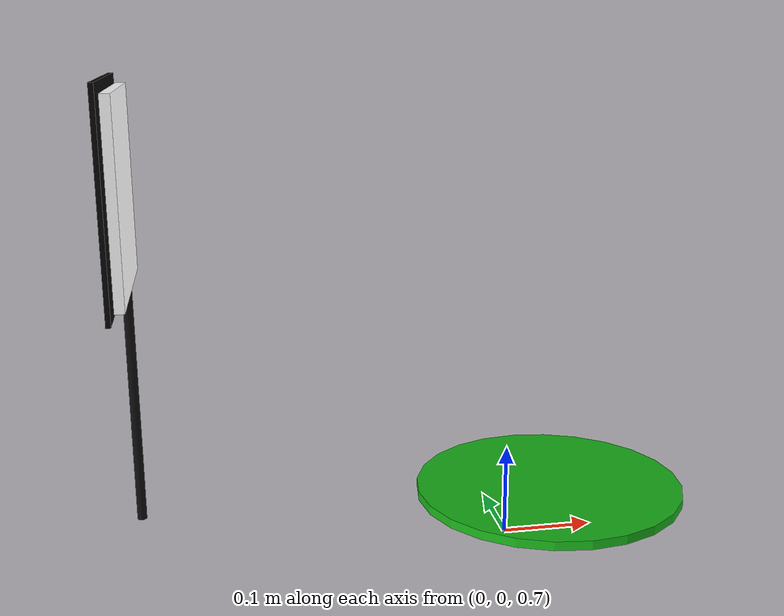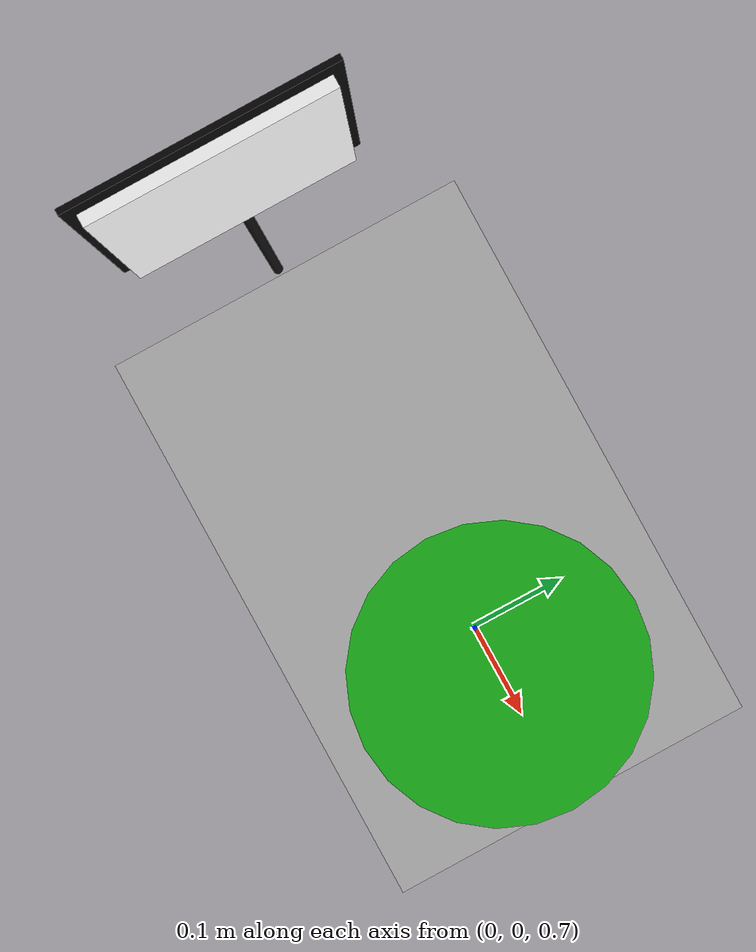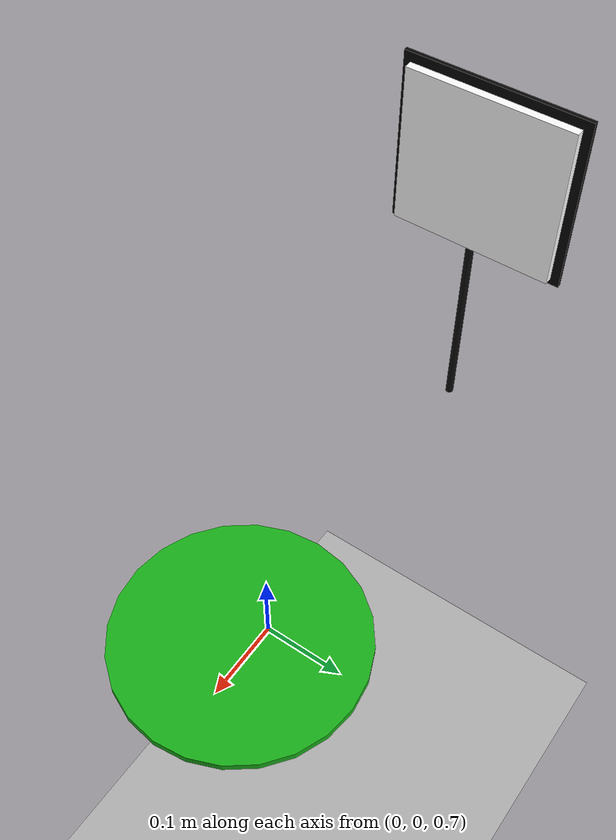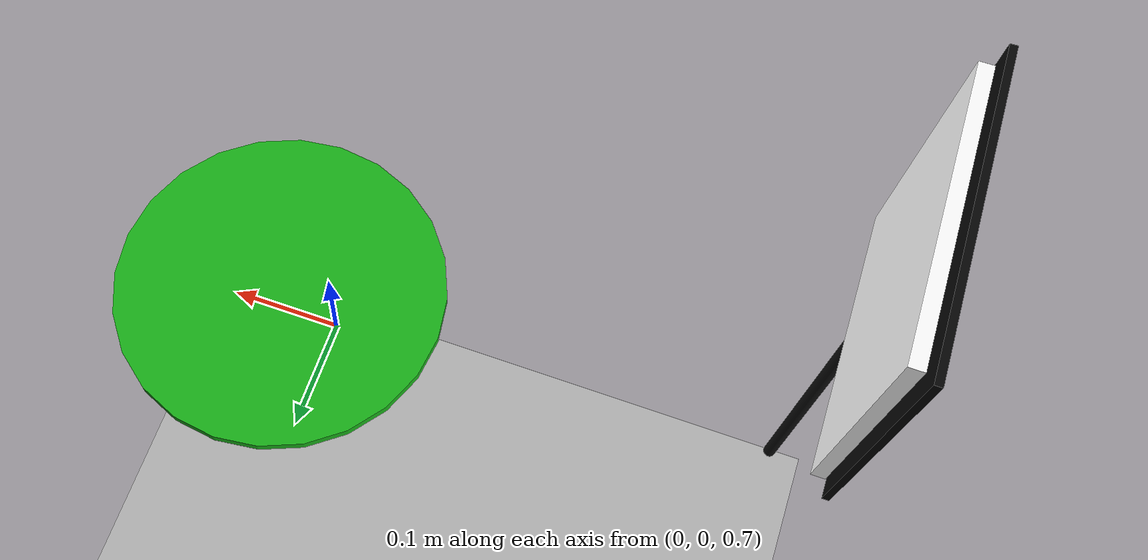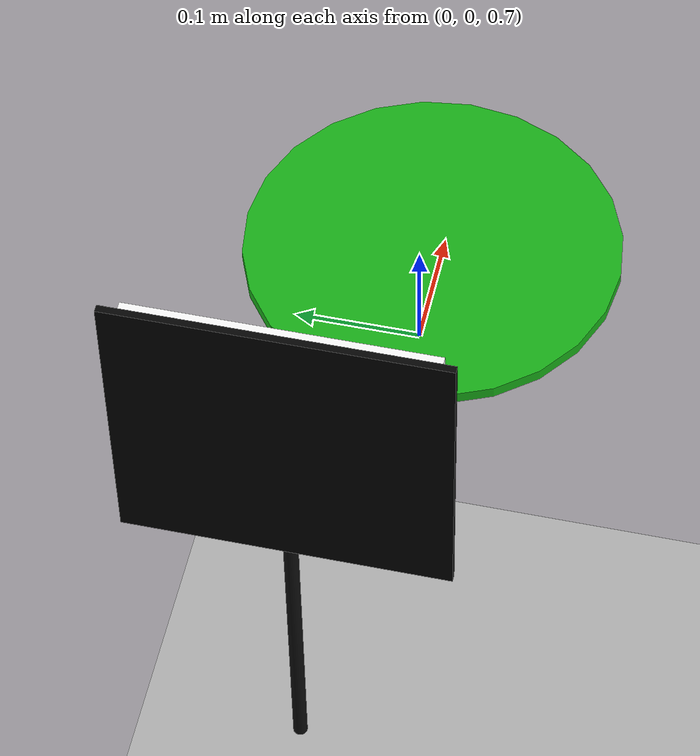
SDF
<sdf version="1.8">
 <world name="tello_sim">
  <physics name="fast_sim" type="ignored">
   <max_step_size>0.001</max_step_size>
   <real_time_factor>0</real_time_factor>
   <real_time_update_rate>0</real_time_update_rate>
  </physics>
  <plugin filename="gz-sim-physics-system" name="gz::sim::systems::Physics"/>
  <plugin filename="gz-sim-user-commands-system" name="gz::sim::systems::UserCommands"/>
  <plugin filename="gz-sim-scene-broadcaster-system" name="gz::sim::systems::SceneBroadcaster"/>
  <plugin filename="gz-sim-sensors-system" name="gz::sim::systems::Sensors">
   <render_engine>ogre2</render_engine>
  </plugin>
  <light type="directional" name="sun">
   <pose>0 0 10 0 0 0</pose>
   <diffuse>0.8 0.8 0.8 1</diffuse>
   <specular>0.2 0.2 0.2 1</specular>
   <direction>-0.5 0.1 -0.9</direction>
  </light>
  <model name="ground_plane">
   <static>true</static>
   <link name="link">
    <collision name="collision"><geometry><plane><normal>0 0 1</normal></plane></geometry></collision>
    <visual name="visual">
     <geometry><plane><normal>0 0 1</normal><size>100 100</size></plane></geometry>
     <material><ambient>0.7 0.7 0.7 1</ambient><diffuse>0.7 0.7 0.7 1</diffuse></material>
    </visual>
   </link>
  </model>
  <model name="landing_pad">
   <static>true</static>
   <pose>0.05 0 0.75 0 0 0</pose>
   <link name="link">
    <visual name="visual">
     <geometry><cylinder><radius>0.15</radius><length>0.01</length></cylinder></geometry>
     <material><ambient>0.1 0.7 0.1 1</ambient><diffuse>0.1 0.7 0.1 1</diffuse></material>
    </visual>
   </link>
  </model>
  <model name="marker_pole">
   <static>true</static>
   <pose>-0.40 0 0.925 0 0 0</pose>
   <link name="link">
    <visual name="visual">
     <geometry><cylinder><radius>0.005</radius><length>0.35</length></cylinder></geometry>
     <material><ambient>0.05 0.05 0.05 1</ambient><diffuse>0.05 0.05 0.05 1</diffuse></material>
    </visual>
   </link>
  </model>
  <model name="aruco_marker">
   <static>true</static>
   <pose>-0.40 0 1.10 0 0 0</pose>
   <link name="link">
    <visual name="visual">
     <geometry><box><size>0.01 0.20 0.20</size></box></geometry>
     <material>
      <ambient>1.0 1.0 1.0 1</ambient>
      <diffuse>1.0 1.0 1.0 1</diffuse>
      <emissive>1.0 1.0 1.0 1</emissive>
      <pbr>
       <metal><albedo_map>aruco_marker.png</albedo_map><emissive_map>aruco_marker.png</emissive_map></metal>
      </pbr>
     </material>
    </visual>
   </link>
  </model>
  <model name="marker_backplate">
   <static>true</static>
   <pose>-0.41 0 1.10 0 0 0</pose>
   <link name="link">
    <visual name="visual">
     <geometry><box><size>0.005 0.22 0.22</size></box></geometry>
     <material><ambient>0.02 0.02 0.02 1</ambient><diffuse>0.02 0.02 0.02 1</diffuse></material>
    </visual>
   </link>
  </model>
 </world>
</sdf>
